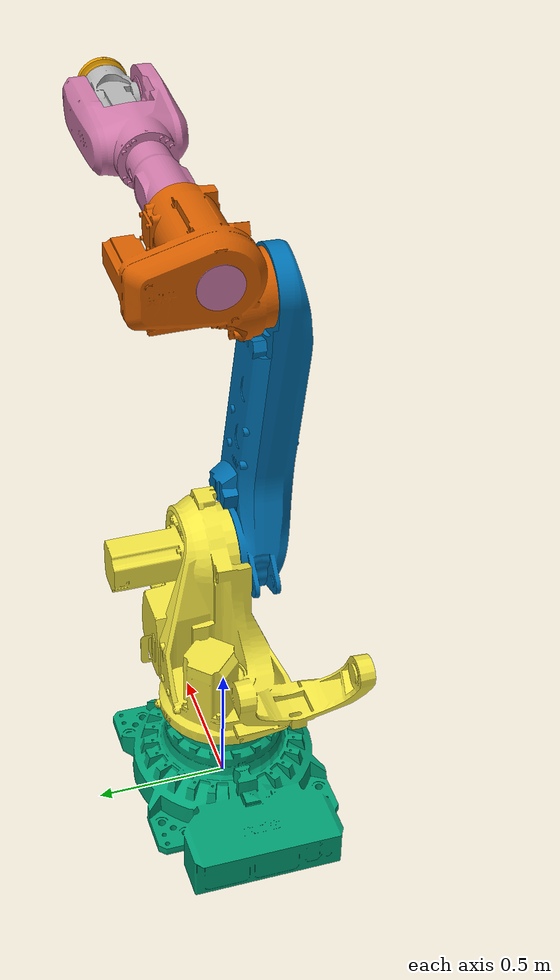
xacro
<?xml version="1.0" ?>
<robot name="abb_irb6700_200_260" xmlns:xacro="http://ros.org/wiki/xacro">
  <xacro:include filename="$(find abb_irb6700_support)/urdf/irb6700_200_260_macro.xacro"/>
  <!--ros control-->
  <xacro:include filename="$(find configuration_descriptions)/gazebo/ros_control.gazebo.xacro" />

  <link name="world" />

  <joint name="world_joint" type="fixed">
    <parent link="world" />
    <child link="actuator_link"/>
  </joint>

  <xacro:abb_irb6700_200_260 prefix=""/>

</robot>

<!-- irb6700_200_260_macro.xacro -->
<robot xmlns:xacro="http://ros.org/wiki/xacro">
  <xacro:macro name="abb_irb6700_200_260" params="prefix">
    <xacro:include filename="$(find abb_resources)/urdf/common_materials.xacro"/>
    <xacro:include filename="$(find abb_irb6700_support)/urdf/irb6700_200_260.transmission.xacro"/>
    <xacro:include filename="$(find abb_irb6700_support)/urdf/irb6700_200_260.gazebo.xacro"/>

    <xacro:macro name="cylinder_inertial" params="radius length mass *origin">
      <inertial>
        <mass value="${mass}" />
        <xacro:insert_block name="origin" />
        <inertia ixx="${0.0833333 * mass * (3 * radius * radius + length * length)}" ixy="0.0" ixz="0.0"
        iyy="${0.0833333 * mass * (3 * radius * radius + length * length)}" iyz="0.0"
        izz="${0.5 * mass * radius * radius}" />
      </inertial>
    </xacro:macro>

    <!-- link list -->
    <link name="${prefix}actuator_link">
      <collision>
        <origin xyz="0 0 0" rpy="0 0 0" />
        <geometry>
          <box size="1 8 0.2"/>
        </geometry>
        <xacro:material_abb_yellow/>
      </collision>
      <xacro:cylinder_inertial radius="0.06" length="0.05" mass="10">
          <origin xyz="0.0 0.0 0.0" rpy="0 0 0" />
      </xacro:cylinder_inertial>
    </link>
    <link name="${prefix}base_link">
      <visual>
        <origin xyz="0 0 0" rpy="0 0 0" />
        <geometry>
          <mesh filename="package://abb_irb6700_support/meshes/irb6700/visual/base_link.stl" />
        </geometry>
        <xacro:material_abb_white/>
      </visual>
      <collision>
        <origin xyz="0 0 0" rpy="0 0 0" />
        <geometry>
          <mesh filename="package://abb_irb6700_support/meshes/irb6700/collision/base_link.stl" />
        </geometry>
        <xacro:material_abb_yellow/>
      </collision>
      <xacro:cylinder_inertial radius="0.06" length="0.05" mass="10">
          <origin xyz="0.0 0.0 0.0" rpy="0 0 0" />
      </xacro:cylinder_inertial>
    </link>
    <link name="${prefix}link_1">
      <visual>
        <origin xyz="0 0 0" rpy="0 0 0" />
        <geometry>
          <mesh filename="package://abb_irb6700_support/meshes/irb6700/visual/link_1.stl" />
        </geometry>
        <xacro:material_abb_white/>
      </visual>
      <collision>
        <origin xyz="0 0 0" rpy="0 0 0" />
        <geometry>
          <mesh filename="package://abb_irb6700_support/meshes/irb6700/collision/link_1.stl" />
        </geometry>
        <xacro:material_abb_yellow/>
      </collision>
    </link>
    <link name="${prefix}link_2">
      <visual>
        <origin xyz="0 0 0" rpy="0 0 0" />
        <geometry>
          <mesh filename="package://abb_irb6700_support/meshes/irb6700_200_260/visual/link_2.stl" />
        </geometry>
        <xacro:material_abb_white/>
      </visual>
      <collision>
        <origin xyz="0 0 0" rpy="0 0 0" />
        <geometry>
          <mesh filename="package://abb_irb6700_support/meshes/irb6700_200_260/collision/link_2.stl" />
        </geometry>
        <xacro:material_abb_yellow/>
      </collision>
    </link>
    <link name="${prefix}link_3">
      <visual>
        <origin xyz="0 0 0" rpy="0 0 0" />
        <geometry>
          <mesh filename="package://abb_irb6700_support/meshes/irb6700_200_260/visual/link_3.stl" />
        </geometry>
        <xacro:material_abb_white/>
      </visual>
      <collision>
        <origin xyz="0 0 0" rpy="0 0 0" />
        <geometry>
          <mesh filename="package://abb_irb6700_support/meshes/irb6700_200_260/collision/link_3.stl" />
        </geometry>
        <xacro:material_abb_yellow/>
      </collision>
    </link>
    <link name="${prefix}link_4">
      <visual>
        <origin xyz="0 0 0" rpy="0 0 0" />
        <geometry>
          <mesh filename="package://abb_irb6700_support/meshes/irb6700_200_260/visual/link_4.stl" />
        </geometry>
        <xacro:material_abb_white/>
      </visual>
      <collision>
        <origin xyz="0 0 0" rpy="0 0 0" />
        <geometry>
          <mesh filename="package://abb_irb6700_support/meshes/irb6700_200_260/collision/link_4.stl" />
        </geometry>
        <xacro:material_abb_yellow/>
      </collision>
    </link>
    <link name="${prefix}link_5">
      <visual>
        <origin xyz="0 0 0" rpy="0 0 0" />
        <geometry>
          <mesh filename="package://abb_irb6700_support/meshes/irb6700/visual/link_5.stl" />
        </geometry>
        <xacro:material_abb_white/>
      </visual>
      <collision>
        <origin xyz="0 0 0" rpy="0 0 0" />
        <geometry>
          <mesh filename="package://abb_irb6700_support/meshes/irb6700/collision/link_5.stl" />
        </geometry>
        <xacro:material_abb_yellow/>
      </collision>
    </link>
    <link name="${prefix}link_6">
      <visual>
        <origin xyz="0 0 0" rpy="0 0 0" />
        <geometry>
          <mesh filename="package://abb_irb6700_support/meshes/irb6700/visual/link_6.stl" />
        </geometry>
        <xacro:material_abb_white/>
      </visual>
      <collision>
        <origin xyz="0 0 0" rpy="0 0 0" />
        <geometry>
          <mesh filename="package://abb_irb6700_support/meshes/irb6700/collision/link_6.stl" />
        </geometry>
        <xacro:material_abb_yellow/>
      </collision>
    </link>

    <joint name="${prefix}actuator_joint" type="prismatic">
      <origin xyz="0 0 0" rpy="0 0 0" />
      <parent link="${prefix}actuator_link" />
      <child link="${prefix}base_link" />
      <axis xyz="0 1 0" />
      <limit lower="-4" upper="4" effort="0" velocity="1" />
    </joint>
    <joint name="${prefix}joint_1" type="revolute">
      <origin xyz="0 0 0.88" rpy="0 0 0" />
      <parent link="${prefix}base_link" />
      <child link="${prefix}link_1" />
      <axis xyz="0 0 1" />
      <limit lower="-${radians(170)}" upper="${radians(170)}" effort="0" velocity="${radians(110)}" />
    </joint>
    <joint name="${prefix}joint_2" type="revolute">
      <origin xyz="0.32 0 0" rpy="0 0 0" />
      <parent link="${prefix}link_1" />
      <child link="${prefix}link_2" />
      <axis xyz="0 1 0" />
      <limit lower="-${radians(65)}" upper="${radians(85)}" effort="0" velocity="${radians(110)}" />
    </joint>
    <joint name="${prefix}joint_3" type="revolute">
      <origin xyz="0 0 1.125" rpy="0 0 0" />
      <parent link="${prefix}link_2" />
      <child link="${prefix}link_3" />
      <axis xyz="0 1 0" />
      <limit lower="-${radians(180)}" upper="${radians(70)}" effort="0" velocity="${radians(110)}" />
    </joint>
    <joint name="${prefix}joint_4" type="revolute">
      <origin xyz="0 0 0.2" rpy="0 0 0" />
      <parent link="${prefix}link_3" />
      <child link="${prefix}link_4" />
      <axis xyz="1 0 0" />
      <limit lower="-${radians(300)}" upper="${radians(300)}" effort="0" velocity="${radians(190)}" />
    </joint>
    <joint name="${prefix}joint_5" type="revolute">
      <origin xyz="1.1425 0 0" rpy="0 0 0" />
      <parent link="${prefix}link_4" />
      <child link="${prefix}link_5" />
      <axis xyz="0 1 0" />
      <limit lower="-${radians(130)}" upper="${radians(130)}" effort="0" velocity="${radians(150)}" />
    </joint>
    <joint name="${prefix}joint_6" type="revolute">
      <origin xyz="0.2 0 0" rpy="0 0 0" />
      <parent link="${prefix}link_5" />
      <child link="${prefix}link_6" />
      <axis xyz="1 0 0" />
      <limit lower="-${radians(360)}" upper="${radians(360)}" effort="0" velocity="${radians(210)}" />
    </joint>

    <!-- ROS-Industrial 'base' frame: base_link to ABB World Coordinates transform -->
    <link name="${prefix}base" />
    <joint name="${prefix}base_link-base" type="fixed">
      <origin xyz="0 0 0" rpy="0 0 0"/>
      <parent link="${prefix}base_link"/>
      <child link="${prefix}base"/>
    </joint>

    <!-- ROS-Industrial 'flange' frame: attachment point for EEF models -->
    <link name="${prefix}flange"/>
    <joint type="fixed" name="${prefix}joint_6-flange">
      <origin xyz="0 0 0" rpy="0 0 0"/>
      <parent link="${prefix}link_6"/>
      <child link="${prefix}flange"/>
    </joint>

    <!-- ROS-Industrial 'tool0' frame: all-zeros tool frame -->
    <link name="${prefix}tool0" />
    <joint name="${prefix}link_6-tool0" type="fixed">
      <origin xyz="0 0 0" rpy="0 ${radians(90)} 0" />
      <parent link="${prefix}flange" />
      <child link="${prefix}tool0" />
    </joint>

    <xacro:irb6700_200_260_transmission prefix="${prefix}" />
    <xacro:irb6700_200_260_gazebo prefix="${prefix}" />
  </xacro:macro>
</robot>
